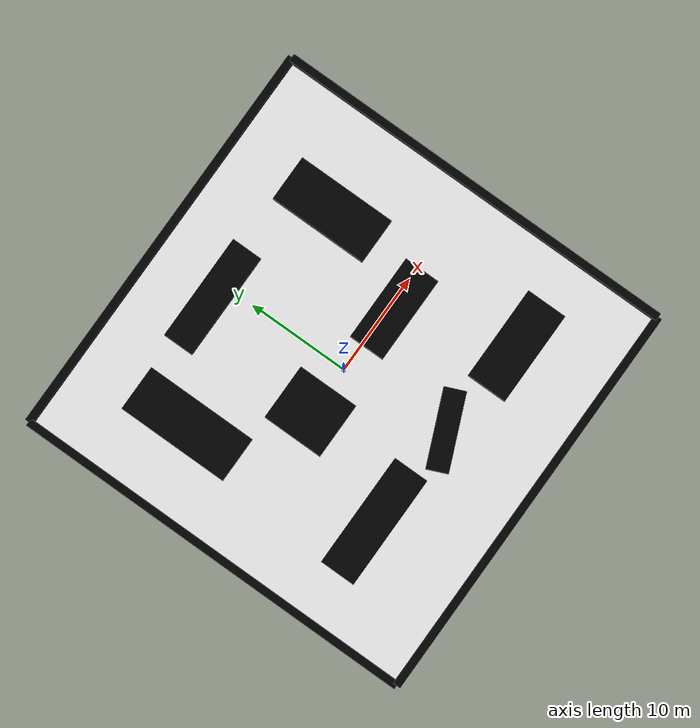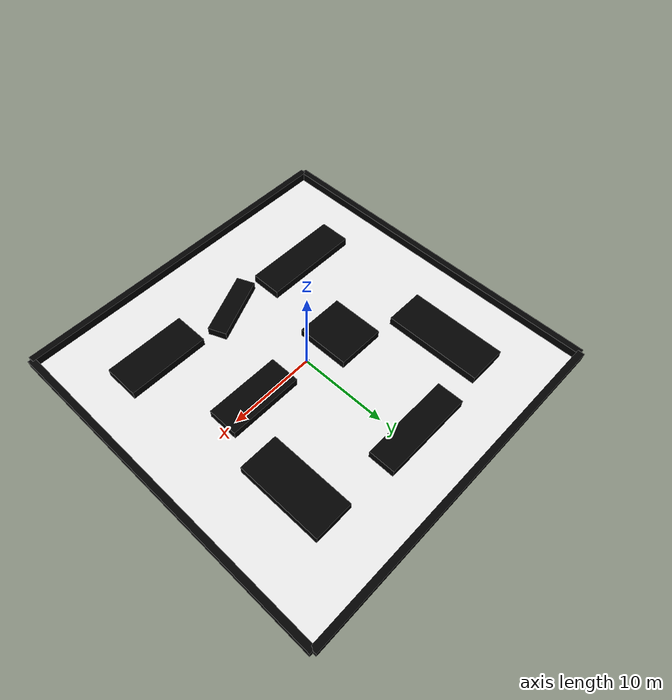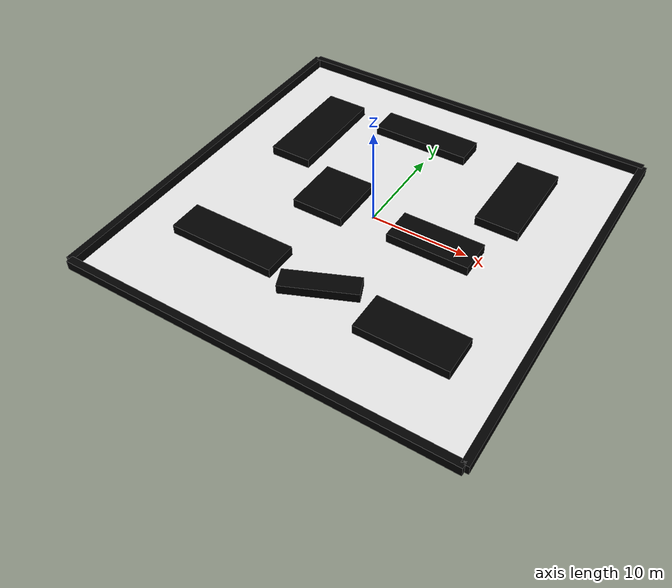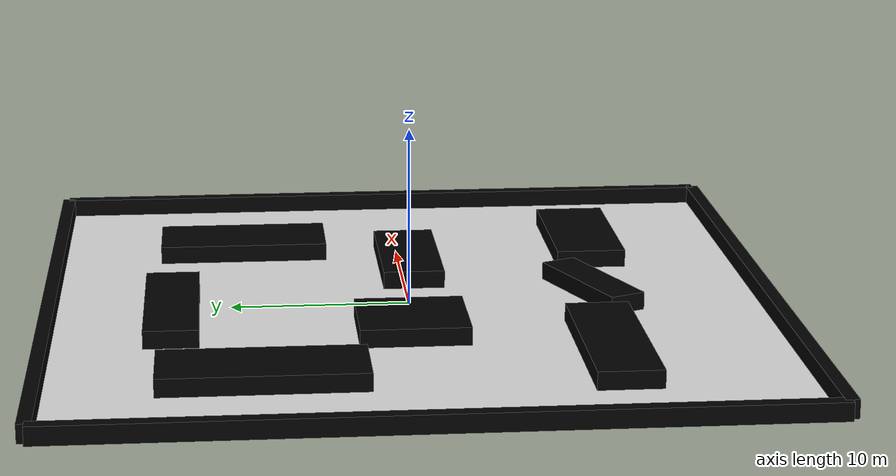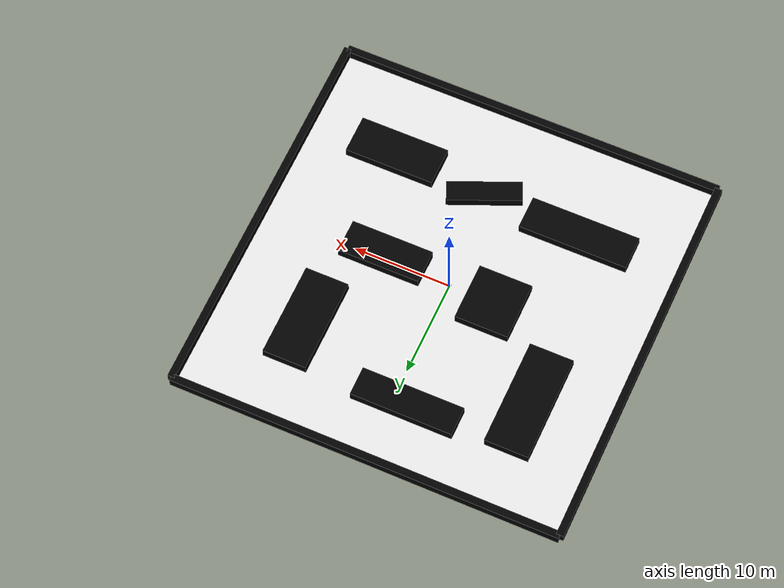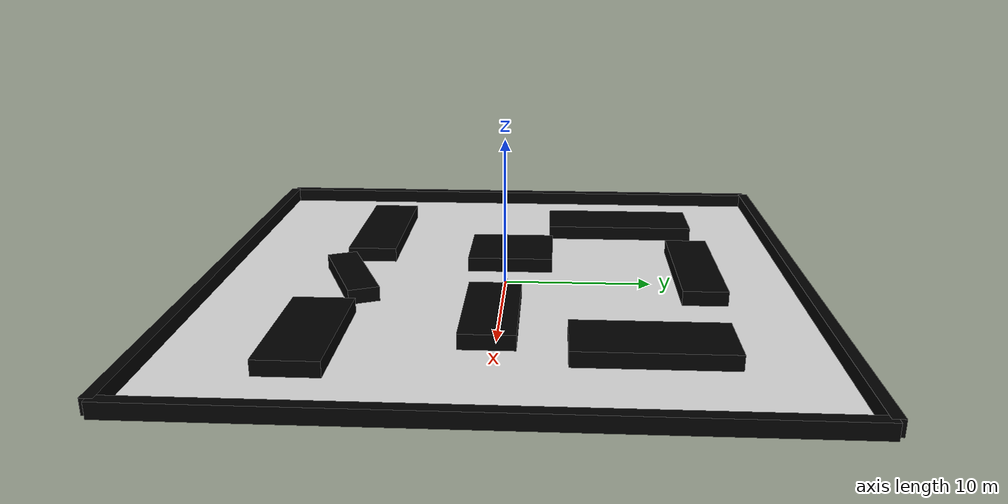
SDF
<?xml version="1.0" ?>
<sdf version="1.9">
  <world name="warehouse_mcl_world">

    <!-- Ignition / Gazebo Fortress systems -->
    <plugin filename="ignition-gazebo-physics-system" name="ignition::gazebo::systems::Physics" />
    <plugin filename="ignition-gazebo-user-commands-system" name="ignition::gazebo::systems::UserCommands" />
    <plugin filename="ignition-gazebo-scene-broadcaster-system" name="ignition::gazebo::systems::SceneBroadcaster" />
    <plugin filename="ignition-gazebo-sensors-system" name="ignition::gazebo::systems::Sensors">
      <render_engine>ogre2</render_engine>
    </plugin>

    <physics name="default_physics" type="ignored">
      <max_step_size>0.001</max_step_size>
      <real_time_factor>1.0</real_time_factor>
    </physics>

    <scene>
      <ambient>0.8 0.8 0.8 1</ambient>
      <background>0.95 0.95 0.95 1</background>
      <shadows>true</shadows>
    </scene>

    <light type="directional" name="sun">
      <cast_shadows>true</cast_shadows>
      <pose>0 0 20 0 0 0</pose>
      <diffuse>0.8 0.8 0.8 1</diffuse>
      <specular>0.2 0.2 0.2 1</specular>
      <direction>-0.5 0.1 -0.9</direction>
    </light>

    <!-- MAPA: 40 m x 40 m         -->
    <!-- Equivalente a 800 px,     -->
    <!-- resolución 0.05 m/pixel   -->

    <model name="ground_plane">
      <static>true</static>
      <pose>0 0 -0.025 0 0 0</pose>
      <link name="ground_link">
        <collision name="ground_collision">
          <geometry>
            <box>
              <size>40 40 0.05</size>
            </box>
          </geometry>
        </collision>
        <visual name="ground_visual">
          <geometry>
            <box>
              <size>40 40 0.05</size>
            </box>
          </geometry>
          <material>
            <ambient>0.9 0.9 0.9 1</ambient>
            <diffuse>0.9 0.9 0.9 1</diffuse>
          </material>
        </visual>
      </link>
    </model>

    <!-- Muros exteriores -->
    <model name="wall_north">
      <static>true</static>
      <pose>0 20 0.5 0 0 0</pose>
      <link name="link">
        <collision name="collision"><geometry><box><size>40 0.75 1</size></box></geometry></collision>
        <visual name="visual"><geometry><box><size>40 0.75 1</size></box></geometry><material><ambient>0 0 0 1</ambient><diffuse>0 0 0 1</diffuse></material></visual>
      </link>
    </model>

    <model name="wall_south">
      <static>true</static>
      <pose>0 -20 0.5 0 0 0</pose>
      <link name="link">
        <collision name="collision"><geometry><box><size>40 0.75 1</size></box></geometry></collision>
        <visual name="visual"><geometry><box><size>40 0.75 1</size></box></geometry><material><ambient>0 0 0 1</ambient><diffuse>0 0 0 1</diffuse></material></visual>
      </link>
    </model>

    <model name="wall_east">
      <static>true</static>
      <pose>20 0 0.5 0 0 0</pose>
      <link name="link">
        <collision name="collision"><geometry><box><size>0.75 40 1</size></box></geometry></collision>
        <visual name="visual"><geometry><box><size>0.75 40 1</size></box></geometry><material><ambient>0 0 0 1</ambient><diffuse>0 0 0 1</diffuse></material></visual>
      </link>
    </model>

    <model name="wall_west">
      <static>true</static>
      <pose>-20 0 0.5 0 0 0</pose>
      <link name="link">
        <collision name="collision"><geometry><box><size>0.75 40 1</size></box></geometry></collision>
        <visual name="visual"><geometry><box><size>0.75 40 1</size></box></geometry><material><ambient>0 0 0 1</ambient><diffuse>0 0 0 1</diffuse></material></visual>
      </link>
    </model>

    <!-- Interior warehouse obstacles matching warehouse_layout.png -->
    <model name="left_shelf_block"><static>true</static><pose>-12.0 8.5 0.5 0 0 0</pose><link name="link"><collision name="collision"><geometry><box><size>4.5 11.0 1</size></box></geometry></collision><visual name="visual"><geometry><box><size>4.5 11.0 1</size></box></geometry><material><ambient>0 0 0 1</ambient><diffuse>0 0 0 1</diffuse></material></visual></link></model>
    <model name="top_shelf_block"><static>true</static><pose>-1.5 13.25 0.5 0 0 0</pose><link name="link"><collision name="collision"><geometry><box><size>10.5 3.0 1</size></box></geometry></collision><visual name="visual"><geometry><box><size>10.5 3.0 1</size></box></geometry><material><ambient>0 0 0 1</ambient><diffuse>0 0 0 1</diffuse></material></visual></link></model>
    <model name="right_shelf_block"><static>true</static><pose>11.0 9.125 0.5 0 0 0</pose><link name="link"><collision name="collision"><geometry><box><size>4.5 9.75 1</size></box></geometry></collision><visual name="visual"><geometry><box><size>4.5 9.75 1</size></box></geometry><material><ambient>0 0 0 1</ambient><diffuse>0 0 0 1</diffuse></material></visual></link></model>
    <model name="central_storage_block"><static>true</static><pose>-4.75 0.25 0.5 0 0 0</pose><link name="link"><collision name="collision"><geometry><box><size>5.5 6.0 1</size></box></geometry></collision><visual name="visual"><geometry><box><size>5.5 6.0 1</size></box></geometry><material><ambient>0 0 0 1</ambient><diffuse>0 0 0 1</diffuse></material></visual></link></model>
    <model name="middle_right_rack"><static>true</static><pose>7.0 -0.5 0.5 0 0 0</pose><link name="link"><collision name="collision"><geometry><box><size>8.5 3.5 1</size></box></geometry></collision><visual name="visual"><geometry><box><size>8.5 3.5 1</size></box></geometry><material><ambient>0 0 0 1</ambient><diffuse>0 0 0 1</diffuse></material></visual></link></model>
    <model name="lower_left_rack"><static>true</static><pose>-9.375 -10.0 0.5 0 0 0</pose><link name="link"><collision name="collision"><geometry><box><size>11.25 3.5 1</size></box></geometry></collision><visual name="visual"><geometry><box><size>11.25 3.5 1</size></box></geometry><material><ambient>0 0 0 1</ambient><diffuse>0 0 0 1</diffuse></material></visual></link></model>
    <model name="lower_right_rack"><static>true</static><pose>10.625 -11.25 0.5 0 0 0</pose><link name="link"><collision name="collision"><geometry><box><size>9.25 4.0 1</size></box></geometry></collision><visual name="visual"><geometry><box><size>9.25 4.0 1</size></box></geometry><material><ambient>0 0 0 1</ambient><diffuse>0 0 0 1</diffuse></material></visual></link></model>
    <model name="diagonal_pallet_row"><static>true</static><pose>0.9 -10.5 0.5 0 0 0.4014</pose><link name="link"><collision name="collision"><geometry><box><size>7.5 2.1 1</size></box></geometry></collision><visual name="visual"><geometry><box><size>7.5 2.1 1</size></box></geometry><material><ambient>0 0 0 1</ambient><diffuse>0 0 0 1</diffuse></material></visual></link></model>

    <!-- PUZZLEBOT diferencial con LiDAR 2D                  -->
    <!-- Publica /odom y /scan. Recibe /cmd_vel.             -->
    <model name="puzzlebot">
      <pose>0 0 0.12 0 0 0</pose>

      <link name="base_link">
        <pose>0 0 0 0 0 0</pose>
        <inertial>
          <mass>3.0</mass>
          <inertia>
            <ixx>0.035</ixx>
            <iyy>0.035</iyy>
            <izz>0.055</izz>
            <ixy>0</ixy>
            <ixz>0</ixz>
            <iyz>0</iyz>
          </inertia>
        </inertial>

        <collision name="base_collision">
          <geometry>
            <box>
              <size>0.34 0.28 0.16</size>
            </box>
          </geometry>
        </collision>

        <visual name="base_visual">
          <geometry>
            <box>
              <size>0.34 0.28 0.16</size>
            </box>
          </geometry>
          <material>
            <ambient>0.05 0.15 0.9 1</ambient>
            <diffuse>0.05 0.15 0.9 1</diffuse>
          </material>
        </visual>
      </link>

      <!-- Cuerpo superior para que parezca PuzzleBot -->
      <link name="top_plate">
        <pose>0 0 0.11 0 0 0</pose>
        <inertial>
          <mass>0.4</mass>
          <inertia>
            <ixx>0.002</ixx><iyy>0.002</iyy><izz>0.002</izz>
            <ixy>0</ixy><ixz>0</ixz><iyz>0</iyz>
          </inertia>
        </inertial>
        <visual name="top_visual">
          <geometry>
            <box>
              <size>0.26 0.20 0.04</size>
            </box>
          </geometry>
          <material>
            <ambient>0.0 0.55 0.95 1</ambient>
            <diffuse>0.0 0.55 0.95 1</diffuse>
          </material>
        </visual>
        <collision name="top_collision">
          <geometry>
            <box>
              <size>0.26 0.20 0.04</size>
            </box>
          </geometry>
        </collision>
      </link>

      <joint name="top_plate_fixed_joint" type="fixed">
        <parent>base_link</parent>
        <child>top_plate</child>
      </joint>

      <!-- Rueda izquierda: centro a z=-0.07 para que toque el suelo (modelo z=0.12, radio=0.05) -->
      <link name="left_wheel">
        <pose>0 0.17 -0.07 1.5708 0 0</pose>
        <inertial>
          <mass>0.25</mass>
          <inertia>
            <ixx>0.00025</ixx><iyy>0.00025</iyy><izz>0.00025</izz>
            <ixy>0</ixy><ixz>0</ixz><iyz>0</iyz>
          </inertia>
        </inertial>
        <collision name="left_wheel_collision">
          <geometry>
            <cylinder>
              <radius>0.05</radius>
              <length>0.035</length>
            </cylinder>
          </geometry>
          <surface>
            <friction>
              <ode><mu>1.0</mu><mu2>1.0</mu2></ode>
            </friction>
          </surface>
        </collision>
        <visual name="left_wheel_visual">
          <geometry>
            <cylinder>
              <radius>0.05</radius>
              <length>0.035</length>
            </cylinder>
          </geometry>
          <material>
            <ambient>0.02 0.02 0.02 1</ambient>
            <diffuse>0.02 0.02 0.02 1</diffuse>
          </material>
        </visual>
      </link>

      <!-- Rueda derecha: centro a z=-0.07 para que toque el suelo (modelo z=0.12, radio=0.05) -->
      <link name="right_wheel">
        <pose>0 -0.17 -0.07 1.5708 0 0</pose>
        <inertial>
          <mass>0.25</mass>
          <inertia>
            <ixx>0.00025</ixx><iyy>0.00025</iyy><izz>0.00025</izz>
            <ixy>0</ixy><ixz>0</ixz><iyz>0</iyz>
          </inertia>
        </inertial>
        <collision name="right_wheel_collision">
          <geometry>
            <cylinder>
              <radius>0.05</radius>
              <length>0.035</length>
            </cylinder>
          </geometry>
          <surface>
            <friction>
              <ode><mu>1.0</mu><mu2>1.0</mu2></ode>
            </friction>
          </surface>
        </collision>
        <visual name="right_wheel_visual">
          <geometry>
            <cylinder>
              <radius>0.05</radius>
              <length>0.035</length>
            </cylinder>
          </geometry>
          <material>
            <ambient>0.02 0.02 0.02 1</ambient>
            <diffuse>0.02 0.02 0.02 1</diffuse>
          </material>
        </visual>
      </link>

      <!-- Rueda loca trasera -->
      <link name="caster_wheel">
        <pose>-0.12 0 -0.095 0 0 0</pose>
        <inertial>
          <mass>0.08</mass>
          <inertia>
            <ixx>0.00002</ixx><iyy>0.00002</iyy><izz>0.00002</izz>
            <ixy>0</ixy><ixz>0</ixz><iyz>0</iyz>
          </inertia>
        </inertial>
        <collision name="caster_collision">
          <geometry>
            <sphere><radius>0.025</radius></sphere>
          </geometry>
          <surface>
            <friction>
              <ode><mu>0.05</mu><mu2>0.05</mu2></ode>
            </friction>
          </surface>
        </collision>
        <visual name="caster_visual">
          <geometry>
            <sphere><radius>0.025</radius></sphere>
          </geometry>
          <material>
            <ambient>0.25 0.25 0.25 1</ambient>
            <diffuse>0.25 0.25 0.25 1</diffuse>
          </material>
        </visual>
      </link>

      <joint name="caster_fixed_joint" type="fixed">
        <parent>base_link</parent>
        <child>caster_wheel</child>
      </joint>

      <!-- LiDAR montado al frente/superior -->
      <link name="lidar_link">
        <pose>0.08 0 0.20 0 0 0</pose>
        <inertial>
          <mass>0.15</mass>
          <inertia>
            <ixx>0.0001</ixx><iyy>0.0001</iyy><izz>0.0001</izz>
            <ixy>0</ixy><ixz>0</ixz><iyz>0</iyz>
          </inertia>
        </inertial>
        <collision name="lidar_collision">
          <geometry>
            <cylinder>
              <radius>0.055</radius>
              <length>0.045</length>
            </cylinder>
          </geometry>
        </collision>
        <visual name="lidar_visual">
          <geometry>
            <cylinder>
              <radius>0.055</radius>
              <length>0.045</length>
            </cylinder>
          </geometry>
          <material>
            <ambient>0.1 0.1 0.1 1</ambient>
            <diffuse>0.1 0.1 0.1 1</diffuse>
          </material>
        </visual>

        <sensor name="scan_sensor" type="gpu_lidar">
          <pose>0 0 0 0 0 0</pose>
          <topic>/scan</topic>
          <update_rate>10</update_rate>
          <always_on>true</always_on>
          <visualize>true</visualize>
          <lidar>
            <scan>
              <horizontal>
                <samples>360</samples>
                <resolution>1</resolution>
                <min_angle>-3.14159265</min_angle>
                <max_angle>3.14159265</max_angle>
              </horizontal>
            </scan>
            <range>
              <min>0.08</min>
              <max>18.0</max>
              <resolution>0.01</resolution>
            </range>
          </lidar>
        </sensor>
      </link>

      <joint name="lidar_fixed_joint" type="fixed">
        <parent>base_link</parent>
        <child>lidar_link</child>
      </joint>

      <!-- Joints diferenciales -->
      <joint name="left_wheel_joint" type="revolute">
        <parent>base_link</parent>
        <child>left_wheel</child>
        <axis>
          <xyz expressed_in="__model__">0 1 0</xyz>
          <limit>
            <lower>-1e16</lower>
            <upper>1e16</upper>
            <effort>100</effort>
            <velocity>100</velocity>
          </limit>
        </axis>
      </joint>

      <joint name="right_wheel_joint" type="revolute">
        <parent>base_link</parent>
        <child>right_wheel</child>
        <axis>
          <xyz expressed_in="__model__">0 1 0</xyz>
          <limit>
            <lower>-1e16</lower>
            <upper>1e16</upper>
            <effort>100</effort>
            <velocity>100</velocity>
          </limit>
        </axis>
      </joint>

      <!-- Plugin de tracción diferencial tipo PuzzleBot -->
      <plugin filename="ignition-gazebo-diff-drive-system" name="ignition::gazebo::systems::DiffDrive">
        <left_joint>left_wheel_joint</left_joint>
        <right_joint>right_wheel_joint</right_joint>
        <wheel_separation>0.34</wheel_separation>
        <wheel_radius>0.05</wheel_radius>
        <odom_publish_frequency>30</odom_publish_frequency>
        <topic>/cmd_vel</topic>
        <odom_topic>/odom</odom_topic>
        <tf_topic>/tf</tf_topic>
        <frame_id>odom</frame_id>
        <child_frame_id>base_link</child_frame_id>
      </plugin>

    </model>
  </world>
</sdf>
